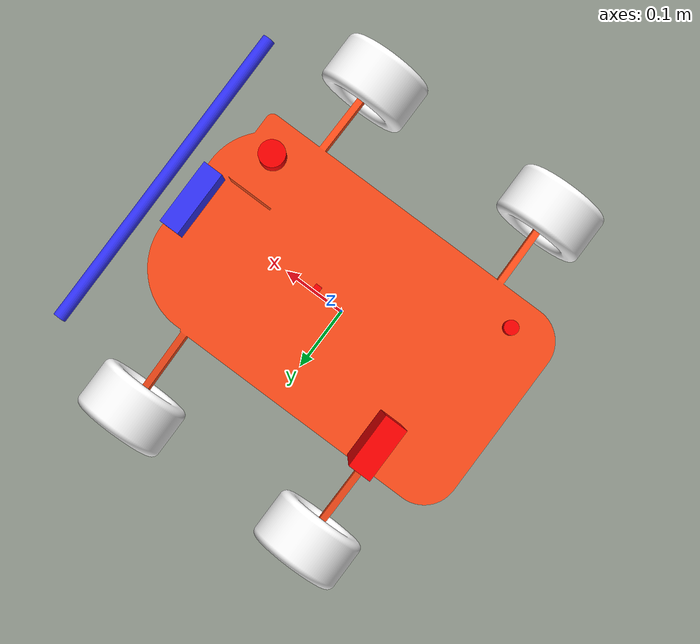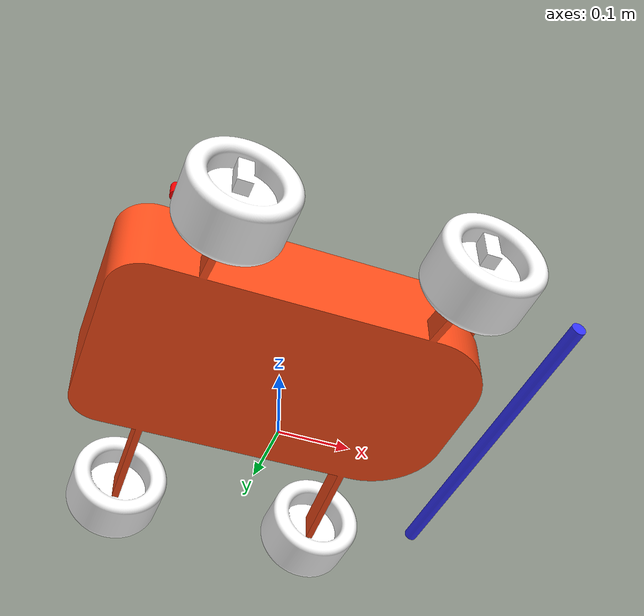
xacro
<?xml version="1.0"?>
<robot xmlns:xacro="http://www.ros.org/wiki/xacro"  name="wheele">

    <xacro:include filename="wheele_core.xacro" />
    <xacro:include filename="macros_gazebo_control.xacro" />

    <xacro:include filename="gazebo_sensors/lidar.xacro" />
    <xacro:include filename="gazebo_sensors/gps.xacro" />
    <xacro:include filename="gazebo_sensors/imu.xacro" />
    <xacro:include filename="gazebo_sensors/collision_sensor.xacro" />
    <xacro:include filename="gazebo_sensors/camera.xacro" />
    <xacro:include filename="gazebo_sensors/lidarAS.xacro" />
</robot>

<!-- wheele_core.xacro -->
<robot xmlns:xacro="http://www.ros.org/wiki/xacro" >

    <xacro:include filename="macros_inertial.xacro"/>
    <xacro:include filename="macros_material.xacro"/>

    <xacro:property name="wheelbase_length" value="0.313"/>
    <xacro:property name="wb_f_length" value="0.133"/>
    <xacro:property name="wb_r_length" value="0.112"/>

    <xacro:property name="chassis_length" value="${wheelbase_length + wb_r_length + wb_f_length}"/>
    <xacro:property name="chassis_width" value="0.313"/>
    <xacro:property name="chassis_height" value="${0.115+0.078}"/>

    <xacro:property name="track" value="0.666"/>

    <xacro:property name="chassis_mass" value="1.0"/>

    <xacro:property name="wheel_radius" value="0.07"/>
    <xacro:property name="wheel_thickness" value="0.085"/>
    <xacro:property name="wheel_mass" value="0.05"/>

    <xacro:property name="wheel_mass" value="0.05"/>

    <xacro:property name="wheel_offset_x" value="0.226"/>
    <xacro:property name="wheel_offset_y" value="0.1485"/>
    <xacro:property name="wheel_offset_z" value="0.01"/>

    <xacro:property name="caster_wheel_radius" value="0.01"/>
    <xacro:property name="caster_wheel_mass" value="0.01"/>
    <xacro:property name="caster_wheel_offset_x" value="0.075"/>
    <xacro:property name="caster_wheel_offset_z" value="${wheel_offset_z - wheel_radius + caster_wheel_radius}"/>
    <xacro:property name="chassis_mesh_file" value="file://$(find wheele_model)/meshes/robot/body_robot_2.dae"/>
    <xacro:property name="wheel_mesh_file" value="file://$(find wheele_model)/meshes/robot/Wheel.dae"/>

    <xacro:property name="lidar_x" value="${wheelbase_length/2 + 0.021 + 0.038/2}"/>
    <xacro:property name="lidar_y" value="${-chassis_width/2 + 0.03 + 0.038/2}"/>
    <xacro:property name="lidar_z" value="${chassis_height+0.02}"/>

    <xacro:property name="gps_x" value="${-wheelbase_length/2 - 0.035}"/>
    <xacro:property name="gps_y" value="${-chassis_width/2 + 0.05}"/>
    <xacro:property name="gps_z" value="${chassis_height+0.10}"/>

    <xacro:property name="imu_x" value="${wheelbase_length/2 -0.115}"/>
    <xacro:property name="imu_y" value="${0.0}"/>
    <xacro:property name="imu_z" value="${chassis_height+0.01}"/>

    <xacro:property name="camera_width" value="0.1"/>
    <xacro:property name="camera_height" value="0.065"/>
    <xacro:property name="camera_length" value="0.03"/>
    <xacro:property name="camera_mass" value="0.05"/>

    <xacro:property name="camera_x" value="${wheelbase_length/2 + 0.08 + camera_length/2}"/>
    <xacro:property name="camera_y" value="${-chassis_width/2 + 0.16}"/>
    <xacro:property name="camera_z" value="${0.078 + 0.06 + camera_height/2}"/>

    <xacro:property name="collision_x" value="${wheelbase_length/2 + 0.16}"/>
    <xacro:property name="collision_y" value="${0}"/>
    <xacro:property name="collision_z" value="${0.07}"/>

    <xacro:property name="lidarAS_width" value="0.076"/>
    <xacro:property name="lidarAS_height" value="0.220"/>
    <xacro:property name="lidarAS_length" value="0.032"/>
    <xacro:property name="lidarAS_mass" value="0.05"/>

    <xacro:property name="lidarAS_x" value="${-wheelbase_length/2 + lidarAS_length/2}"/>
    <xacro:property name="lidarAS_y" value="${chassis_width/2 - 0.04}"/>
    <xacro:property name="lidarAS_z" value="${lidarAS_height/2+chassis_height}"/>
    <!-- MACRO FOR THE WHEELS -->

    <xacro:macro name="wheel" params="prefix reflect_x reflect_y">

        <joint name="base_to_${prefix}_steering" type="continuous">
            <parent link="base_link"/>
            <child link="${prefix}_steering"/>
            <origin xyz="${reflect_x * wheelbase_length/2} ${reflect_y * (track - wheel_thickness)/2} 0" rpy="0 0 0"/>
            <axis xyz="0 0 1"/>
        </joint>

        <!-- fake link to simulate the steering-->
        <link name="${prefix}_steering">
            <inertial>
                <mass value="0.0005" />
                <inertia ixx="0.0000018" ixy="0.0" ixz="0.0"
                        iyy="0.0000018" iyz="0.0"
                        izz="0.0000018" />
            </inertial>
        </link>

        <joint name="steering_to_${prefix}_wheel" type="continuous">
            <parent link="${prefix}_steering"/>
            <child link="${prefix}_wheel"/>
            <origin xyz="0 0 ${wheel_radius}" rpy="0 0 0"/>
            <axis xyz="0 1 0"/>
        </joint>

        <link name="${prefix}_wheel">
            <visual>
                <geometry>
                    <mesh filename="${wheel_mesh_file}" scale="1 1 1" />
                </geometry>
                <origin xyz="0 0 0" rpy="0 0 ${pi/2 + reflect_y * pi/2}"/>
                <material name="white"/>
            </visual>
            <collision>
                <geometry>
                    <cylinder radius="${wheel_radius}" length="${wheel_thickness}"/>
                </geometry>
                <origin xyz="0 0 0" rpy="${pi/2} 0 0"/>
            </collision>
            <xacro:inertial_cylinder mass="${wheel_mass}" length="${wheel_thickness}" radius="${wheel_radius}">
                <origin xyz="0 0 0" rpy="0 0 0"/>
            </xacro:inertial_cylinder>
        </link>

        <gazebo reference="${prefix}_wheel">
            <material>Gazebo/Blue</material>
        </gazebo>
    </xacro:macro>

    <!-- BASE LINK -->
    <link name="base_footprint">
    </link>

    <!-- BASE_FOOTPRINT LINK -->

    <joint name="base_footprint_joint" type="fixed">
        <child link="base_footprint"/>
        <parent link="base_link"/>
        <origin xyz="0 0 0" rpy="0 0 0"/>
    </joint>

    <link name="base_link">

    </link>

    <!-- CHASSIS LINK -->

    <joint name="chassis_joint" type="fixed">
        <parent link="base_link"/>
        <child link="chassis"/>
        <origin xyz="0 0 0"/>
    </joint>

    <link name="chassis">
        <visual>
            <origin xyz="0 0 0" rpy="0 0 ${pi/2}"/>
            <geometry>
                <mesh filename="${chassis_mesh_file}" scale="1 1 1" />
            </geometry>
            <material name="orange"/>
        </visual>
        <collision>
            <origin xyz="0 0 ${chassis_height/2}"/>
            <geometry>
                <box size="${chassis_length} ${chassis_width} ${chassis_height}"/>
            </geometry>
        </collision>
        <xacro:inertial_box mass="0.5" x="${chassis_length}" y="${chassis_width}" z="${chassis_height}">
            <origin xyz="0 0 ${chassis_height/2}" rpy="0 0 0"/>
        </xacro:inertial_box>
    </link>

    <gazebo reference="chassis">
        <material>Gazebo/Orange</material>
    </gazebo>

    <xacro:wheel prefix="front_right" reflect_x="1" reflect_y="1" />
    <xacro:wheel prefix="front_left" reflect_x="1" reflect_y="-1" />
    <xacro:wheel prefix="rear_right" reflect_x="-1" reflect_y="1" />
    <xacro:wheel prefix="rear_left" reflect_x="-1" reflect_y="-1" />

    <!-- CASTER WHEEL LINK -->

</robot>

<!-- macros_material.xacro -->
<robot xmlns:xacro="http://www.ros.org/wiki/xacro" >
    <material name="white">
        <color rgba="1 1 1 1" />
    </material>

    <material name="orange">
        <color rgba="1 0.3 0.1 1"/>
    </material>

    <material name="blue">
        <color rgba="0.2 0.2 1 1"/>
    </material>

    <material name="black">
        <color rgba="0 0 0 1"/>
    </material>

    <material name="red">
        <color rgba="1 0 0 1"/>
    </material>
</robot>

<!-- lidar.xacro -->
<robot xmlns:xacro="http://www.ros.org/wiki/xacro" >

    <joint name="laser_joint" type="fixed">
        <parent link="chassis"/>
        <child link="laser"/>
        <origin xyz="${lidar_x} ${lidar_y} ${lidar_z}" rpy="0 0 0"/>
    </joint>

    <link name="laser">
        <visual>
            <geometry>
                <cylinder radius="${0.038/2}" length="0.04"/>
            </geometry>
            <material name="red"/>
        </visual>
        <collision>
            <geometry>
                <cylinder radius="${0.038/2}" length="0.04"/>
            </geometry>
        </collision>
        <xacro:inertial_cylinder mass="0.1" length="0.04" radius="${0.038/2}">
            <origin xyz="0 0 0" rpy="0 0 0"/>
        </xacro:inertial_cylinder>
    </link>

    <gazebo reference="laser">
        <sensor name='LidarCircularSensor' type='gpu_lidar'>
            <pose relative_to="laser_joint">0 0 0.013 0 0 0</pose>
            <topic>/scangz</topic>

            <update_rate>10</update_rate>
            <ray>
                <scan>
                    <horizontal>
                        <samples>640</samples>
                        <resolution>1</resolution>
                        <min_angle>-2.14159</min_angle>
                        <max_angle>2.14159</max_angle>
                    </horizontal>
                    <vertical>
                        <samples>1</samples>
                        <resolution>0.01</resolution>
                        <min_angle>0</min_angle>
                        <max_angle>0</max_angle>
                    </vertical>
                </scan>
                <range>
                    <min>0.08</min>
                    <max>20.0</max>
                    <resolution>0.01</resolution>
                </range>
            </ray>
            <always_on>1</always_on>
            <visualize>true</visualize>
        </sensor>
    </gazebo>

</robot>

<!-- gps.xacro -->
<robot xmlns:xacro="http://www.ros.org/wiki/xacro" >

    <joint name="gps_joint" type="fixed">
        <parent link="chassis"/>
        <child link="gps"/>
        <origin xyz="${gps_x} ${gps_y} ${gps_z}" rpy="0 0 0"/>
    </joint>

    <link name="gps">
        <visual>
            <geometry>
                <cylinder radius="${0.02/2}" length="0.02"/>
            </geometry>
            <material name="red"/>
        </visual>
        <collision>
            <geometry>
                <cylinder radius="${0.02/2}" length="0.02"/>
            </geometry>
        </collision>
        <xacro:inertial_cylinder mass="0.1" length="0.02" radius="${0.02/2}">
            <origin xyz="0 0 0" rpy="0 0 0"/>
        </xacro:inertial_cylinder>
    </link>

    <gazebo reference="gps">
        <sensor name="navsat" type="navsat">
            <pose relative_to="gps_joint">0 0 0.013 0 0 0</pose>
            <always_on>1</always_on>
            <update_rate>1</update_rate>
            <topic>/navsat</topic>
        </sensor>
    </gazebo>

</robot>

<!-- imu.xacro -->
<robot xmlns:xacro="http://www.ros.org/wiki/xacro" >

    <joint name="imu_joint" type="fixed">
        <parent link="chassis"/>
        <child link="imu"/>
        <origin xyz="${imu_x} ${imu_y} ${imu_z}" rpy="0 0 0"/>
    </joint>

    <link name="imu">
        <visual>
            <geometry>
                <box size="${0.01} ${0.01} ${0.005}"/>
            </geometry>
            <material name="red"/>
        </visual>
        <collision>
            <geometry>
                <box size="${0.01} ${0.01} ${0.005}"/>
            </geometry>
        </collision>
        <xacro:inertial_box mass="0.001" x="${0.01}" y="${0.01}" z="${0.005}">
            <origin xyz="0 0 0" rpy="0 0 0"/>
        </xacro:inertial_box>
    </link>

    <gazebo reference="imu">
        <sensor name="imu_sensor" type="imu">
            <always_on>1</always_on>
            <update_rate>50</update_rate>
            <visualize>true</visualize>
            <topic>/imu</topic>
        </sensor>
    </gazebo>

</robot>

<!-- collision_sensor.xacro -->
<robot xmlns:xacro="http://www.ros.org/wiki/xacro" >

    <joint name="collision_joint" type="fixed">
        <parent link="chassis"/>
        <child link="collision_sensor"/>
        <origin xyz="${collision_x} ${collision_y} ${collision_z}" rpy="${pi/2} 0 0"/>
    </joint>

    <link name="collision_sensor">
        <visual>
            <geometry>
                <cylinder radius="${0.02/2}" length="0.5"/>
            </geometry>
            <material name="blue"/>
        </visual>
        <collision>
            <geometry>
                <cylinder radius="${0.02/2}" length="0.5"/>
            </geometry>
        </collision>
        <xacro:inertial_cylinder mass="0.1" length="0.5" radius="${0.02/2}">
            <origin xyz="0 0 0" rpy="0 0 0"/>
        </xacro:inertial_cylinder>
    </link>

    <gazebo reference="collision_sensor">
        <sensor name='sensor_contact' type='contact'>
          <contact>
            <collision>collision_sensor</collision>
            <topic>/contact</topic>
          </contact>
          <always_on>1</always_on>
          <update_rate>100</update_rate>
        </sensor>
    </gazebo>

</robot>

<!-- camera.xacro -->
<robot xmlns:xacro="http://www.ros.org/wiki/xacro" >

    <joint name="camera_joint" type="fixed">
        <parent link="chassis"/>
        <child link="cam_frame"/>
        <origin xyz="${camera_x} ${camera_y} ${camera_z}" rpy="0 0 0"/>
    </joint>

    <link name="cam_frame">
        <visual>
            <geometry>
                <box size="${camera_length} ${camera_width} ${camera_height}"/>
            </geometry>
            <material name="blue"/>
        </visual>
        <collision>
            <geometry>
                <box size="${camera_length} ${camera_width} ${camera_height}"/>
            </geometry>
        </collision>
        <xacro:inertial_box mass="0.5" x="${camera_length}" y="${camera_width}" z="${camera_height}">
            <origin xyz="0 0 ${camera_height/2}" rpy="0 0 0"/>
        </xacro:inertial_box>
    </link>

    <gazebo reference="cam_frame">
        <sensor name="Camera" type="camera">
            <!--
            https://en.wikipedia.org/wiki/PlayStation_Eye
            -->
            <pose relative_to="camera_joint">0.015 0 0 0 0 0</pose>
            <always_on>1</always_on>
            <update_rate>10</update_rate>
            <topic>/gz_camera/image_raw</topic>
            <camera>
            <horizontal_fov>1.3</horizontal_fov>
            <image>
                <width>640</width>
                <height>480</height>
                <format>R8G8B8</format>
            </image>
            <clip>
                <near>0.1</near>
                <far>1000</far>
            </clip>
            <distortion>
                <k1>-0.383727</k1>
                <k2>0.524611</k2>
                <p1>0.007938</p1>
                <p2>0.033545 </p2>
                <k3>1.991965</k3>
                <center>0.5 0.5</center>
            </distortion>
            </camera>
            <enable_metrics>true</enable_metrics>
        </sensor>
    </gazebo>

</robot>

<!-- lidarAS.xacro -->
<robot xmlns:xacro="http://www.ros.org/wiki/xacro" >

    <joint name="laserAS_joint" type="fixed">
        <parent link="chassis"/>
        <child link="lidarAS"/>
        <origin xyz="${lidarAS_x} ${lidarAS_y} ${lidarAS_z}" rpy="0 0 0"/>
    </joint>

    <link name="lidarAS">
        <visual>
            <geometry>
                <box size="${lidarAS_length} ${lidarAS_width} ${lidarAS_height}"/>
            </geometry>
            <material name="red"/>
        </visual>
        <collision>
            <geometry>
                <box size="${lidarAS_length} ${lidarAS_width} ${lidarAS_height}"/>
            </geometry>
        </collision>
        <xacro:inertial_box mass="0.5" x="${camera_length}" y="${lidarAS_width}" z="${lidarAS_height}">
            <origin xyz="0 0 ${lidarAS_height/2}" rpy="0 0 0"/>
        </xacro:inertial_box>
    </link>

    <gazebo reference="lidarAS">
        <sensor name='lidarASCircularSensor' type='gpu_lidar'>
            <pose relative_to="laserAS_joint">0.016 0.02 0.03 0 0 0</pose>
            <topic>/lidarASgz</topic>
            <update_rate>10</update_rate>
            <ray>
                <scan>
                    <horizontal>
                        <samples>16</samples>
                        <resolution>1</resolution>
                        <min_angle>-0.7853975</min_angle>
                        <max_angle>0.7853975</max_angle>
                    </horizontal>
                    <vertical>
                        <samples>1</samples>
                        <resolution>0.01</resolution>
                        <min_angle>0</min_angle>
                        <max_angle>0</max_angle>
                    </vertical>
                </scan>
                <range>
                    <min>0.08</min>
                    <max>20.0</max>
                    <resolution>0.01</resolution>
                </range>
            </ray>
            <always_on>1</always_on>
            <visualize>true</visualize>
        </sensor>
    </gazebo>

</robot>
